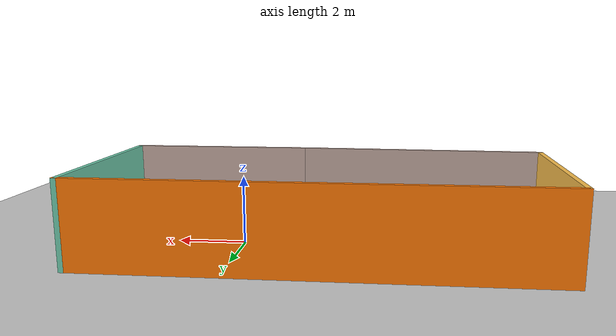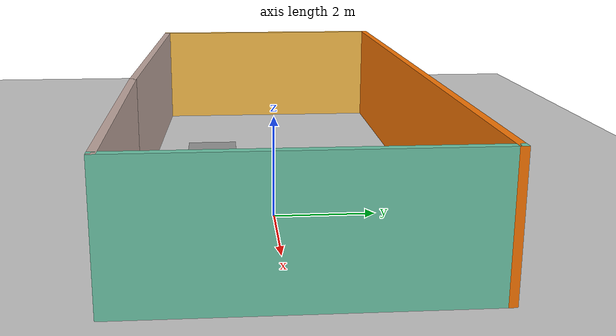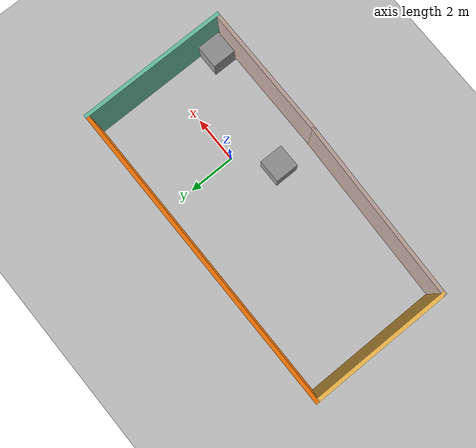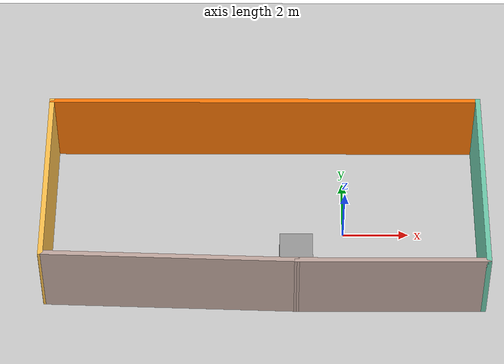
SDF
<sdf version="1.6">
 <world name="default">
  <model name="ground_plane">
   <static>1</static>
   <link name="link">
    <collision name="collision">
     <geometry><plane><normal>0 0 1</normal><size>100 100</size></plane></geometry>
     <surface>
      <contact><collide_bitmask>65535</collide_bitmask></contact>
      <friction><ode><mu>100</mu><mu2>50</mu2></ode></friction>
     </surface>
    </collision>
    <visual name="visual">
     <cast_shadows>0</cast_shadows>
     <geometry><plane><normal>0 0 1</normal><size>100 100</size></plane></geometry>
     <material>
      <script><uri>file://media/materials/scripts/gazebo.material</uri><name>Gazebo/Grey</name></script>
     </material>
    </visual>
   </link>
  </model>
  <model name="Untitled">
   <pose>-2.41123 0.248772 0 0 -0 0</pose>
   <link name="Wall_10">
    <collision name="Wall_10_Collision">
     <geometry><box><size>6 0.15 2.5</size></box></geometry>
     <pose>0 0 1.25 0 -0 0</pose>
    </collision>
    <visual name="Wall_10_Visual">
     <pose>0 0 1.25 0 -0 0</pose>
     <geometry><box><size>6 0.15 2.5</size></box></geometry>
     <material>
      <script><uri>file://media/materials/scripts/gazebo.material</uri><name>Gazebo/Grey</name></script>
      <ambient>1 0.764706 0.305882 1</ambient>
     </material>
     <meta><layer>0</layer></meta>
    </visual>
    <pose>-6.54877 0.126228 0 0 0 -1.5708</pose>
   </link>
   <link name="Wall_11">
    <collision name="Wall_11_Collision">
     <geometry><box><size>7.65417 0.15 2.5</size></box></geometry>
     <pose>0 0 1.25 0 -0 0</pose>
    </collision>
    <visual name="Wall_11_Visual">
     <pose>0 0 1.25 0 -0 0</pose>
     <geometry><box><size>7.65417 0.15 2.5</size></box></geometry>
     <material>
      <script><uri>file://media/materials/scripts/gazebo.material</uri><name>Gazebo/Grey</name></script>
      <ambient>0.760784 0.662745 0.627451 1</ambient>
     </material>
     <meta><layer>0</layer></meta>
    </visual>
    <pose>-2.79877 -2.92377 0 0 0 -0.033321</pose>
   </link>
   <link name="Wall_7">
    <collision name="Wall_7_Collision">
     <geometry><box><size>5.75 0.15 2.5</size></box></geometry>
     <pose>0 0 1.25 0 -0 0</pose>
    </collision>
    <visual name="Wall_7_Visual">
     <pose>0 0 1.25 0 -0 0</pose>
     <geometry><box><size>5.75 0.15 2.5</size></box></geometry>
     <material>
      <script><uri>file://media/materials/scripts/gazebo.material</uri><name>Gazebo/Grey</name></script>
      <ambient>0.760784 0.662745 0.627451 1</ambient>
     </material>
     <meta><layer>0</layer></meta>
    </visual>
    <pose>3.75123 -3.04877 0 0 -0 0</pose>
   </link>
   <link name="Wall_8">
    <collision name="Wall_8_Collision">
     <geometry><box><size>6.25 0.15 2.5</size></box></geometry>
     <pose>0 0 1.25 0 -0 0</pose>
    </collision>
    <visual name="Wall_8_Visual">
     <pose>0 0 1.25 0 -0 0</pose>
     <geometry><box><size>6.25 0.15 2.5</size></box></geometry>
     <material>
      <script><uri>file://media/materials/scripts/gazebo.material</uri><name>Gazebo/Grey</name></script>
      <ambient>0.435294 0.796078 0.67451 1</ambient>
     </material>
     <meta><layer>0</layer></meta>
    </visual>
    <pose>6.55123 0.001228 0 0 -0 1.5708</pose>
   </link>
   <link name="Wall_9">
    <collision name="Wall_9_Collision">
     <geometry><box><size>13.25 0.15 2.5</size></box></geometry>
     <pose>0 0 1.25 0 -0 0</pose>
    </collision>
    <visual name="Wall_9_Visual">
     <pose>0 0 1.25 0 -0 0</pose>
     <geometry><box><size>13.25 0.15 2.5</size></box></geometry>
     <material>
      <script><uri>file://media/materials/scripts/gazebo.material</uri><name>Gazebo/Grey</name></script>
      <ambient>0.996078 0.47451 0.0196078 1</ambient>
     </material>
     <meta><layer>0</layer></meta>
    </visual>
    <pose>0.001229 3.05123 0 0 -0 3.14159</pose>
   </link>
   <static>1</static>
  </model>
  <model name="unit_box_0">
   <pose>-1.45824 -1.20575 0.5 0 -0 0</pose>
   <link name="link">
    <inertial>
     <mass>1</mass>
     <inertia>
      <ixx>0.166667</ixx>
      <ixy>0</ixy>
      <ixz>0</ixz>
      <iyy>0.166667</iyy>
      <iyz>0</iyz>
      <izz>0.166667</izz>
     </inertia>
    </inertial>
    <collision name="collision"><geometry><box><size>1 1 1</size></box></geometry></collision>
    <visual name="visual">
     <geometry><box><size>1 1 1</size></box></geometry>
     <material>
      <script><name>Gazebo/Grey</name><uri>file://media/materials/scripts/gazebo.material</uri></script>
     </material>
    </visual>
   </link>
  </model>
  <model name="unit_box_1">
   <pose>3.57388 -2.18134 0.5 0 -0 0</pose>
   <link name="link">
    <inertial>
     <mass>1</mass>
     <inertia>
      <ixx>0.166667</ixx>
      <ixy>0</ixy>
      <ixz>0</ixz>
      <iyy>0.166667</iyy>
      <iyz>0</iyz>
      <izz>0.166667</izz>
     </inertia>
    </inertial>
    <collision name="collision"><geometry><box><size>1 1 1</size></box></geometry></collision>
    <visual name="visual">
     <geometry><box><size>1 1 1</size></box></geometry>
     <material>
      <script><name>Gazebo/Grey</name><uri>file://media/materials/scripts/gazebo.material</uri></script>
     </material>
    </visual>
   </link>
  </model>
 </world>
</sdf>
